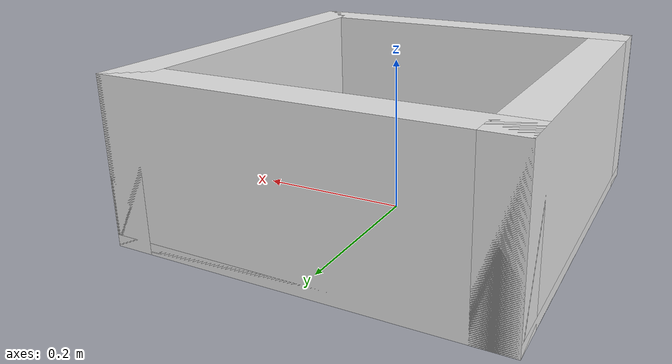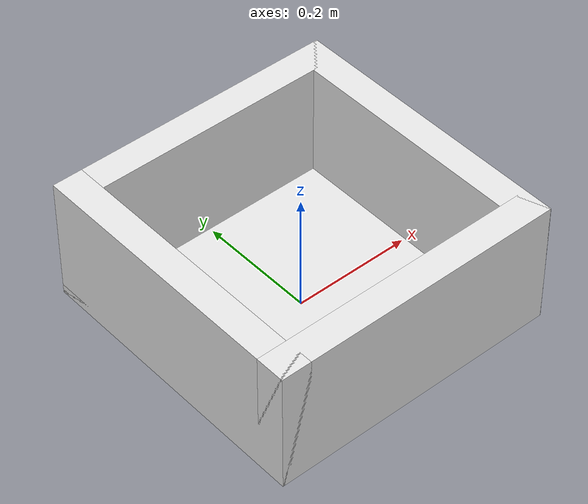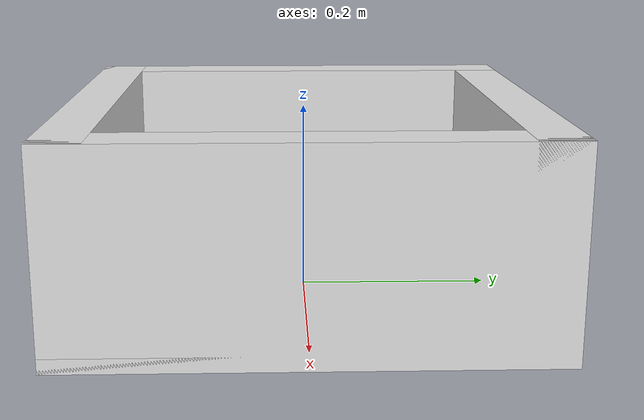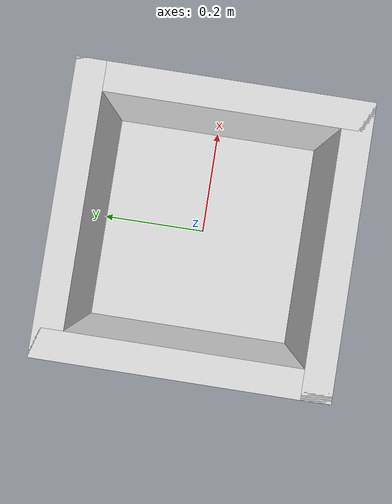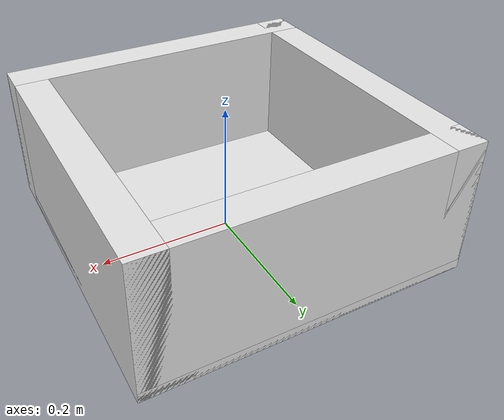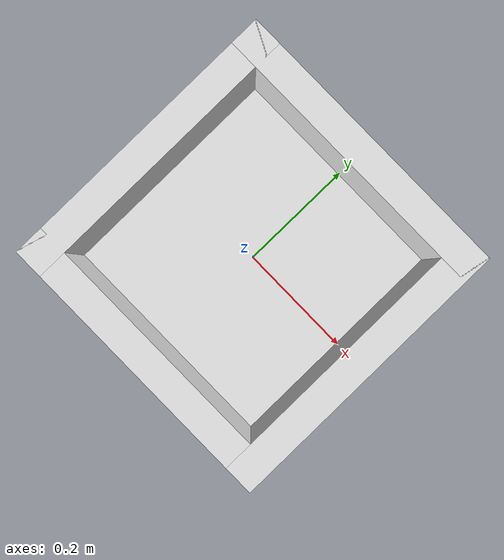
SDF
<?xml version="1.0"?>
<sdf version="1.7">
  <model name="square_bin_model">
    <link name="bin_base">
      <inertial>
        <mass>15.0</mass>
        <inertia>
          <ixx>0.5</ixx>
          <ixy>0</ixy>
          <ixz>0</ixz>
          <iyy>0.5</iyy>
          <iyz>0</iyz>
          <izz>0.8</izz>
        </inertia>
      </inertial>
      <!-- Front wall -->
      <visual name="front_visual">
        <pose>0.22 0 0.105 0 0 0</pose>
        <geometry>
          <box>
            <size>0.05 0.49 0.21</size>
          </box>
        </geometry>
        <material>
          <diffuse>0.9 0.9 0.9 1.0</diffuse>
        </material>
      </visual>
      <collision name="front">
        <pose>0.22 0 0.105 0 0 0</pose>
        <geometry>
          <box>
            <size>0.05 0.49 0.21</size>
          </box>
        </geometry>
      </collision>
      <!-- Back wall -->
      <visual name="back_visual">
        <pose>-0.22 0 0.105 0 0 0</pose>
        <geometry>
          <box>
            <size>0.05 0.49 0.21</size>
          </box>
        </geometry>
        <material>
          <diffuse>0.9 0.9 0.9 1.0</diffuse>
        </material>
      </visual>
      <collision name="back">
        <pose>-0.22 0 0.105 0 0 0</pose>
        <geometry>
          <box>
            <size>0.05 0.49 0.21</size>
          </box>
        </geometry>
      </collision>
      <!-- Left wall -->
      <visual name="left_visual">
        <pose>0 0.22 0.105 0 0 0</pose>
        <geometry>
          <box>
            <size>0.49 0.05 0.21</size>
          </box>
        </geometry>
        <material>
          <diffuse>0.9 0.9 0.9 1.0</diffuse>
        </material>
      </visual>
      <collision name="left">
        <pose>0 0.22 0.105 0 0 0</pose>
        <geometry>
          <box>
            <size>0.49 0.05 0.21</size>
          </box>
        </geometry>
      </collision>
      <!-- Right wall -->
      <visual name="right_visual">
        <pose>0 -0.22 0.105 0 0 0</pose>
        <geometry>
          <box>
            <size>0.49 0.05 0.21</size>
          </box>
        </geometry>
        <material>
          <diffuse>0.9 0.9 0.9 1.0</diffuse>
        </material>
      </visual>
      <collision name="right">
        <pose>0 -0.22 0.105 0 0 0</pose>
        <geometry>
          <box>
            <size>0.49 0.05 0.21</size>
          </box>
        </geometry>
      </collision>
      <!-- Bottom -->
      <visual name="bottom_visual">
        <pose>0.0 0.0 0.0075 0 0 0</pose>
        <geometry>
          <box>
            <size>0.49 0.49 0.015</size>
          </box>
        </geometry>
        <material>
          <diffuse>0.9 0.9 0.9 1.0</diffuse>
        </material>
      </visual>
      <collision name="bottom">
        <pose>0.0 0.0 0.0075 0 0 0</pose>
        <geometry>
          <box>
            <size>0.49 0.49 0.015</size>
          </box>
        </geometry>
      </collision>
    </link>
    <!-- Frame for the top center of the bin -->
    <frame name="bin_top_center">
      <pose relative_to="bin_base">0 0 0.21 0 0 0</pose>
    </frame>
  </model>
</sdf>
